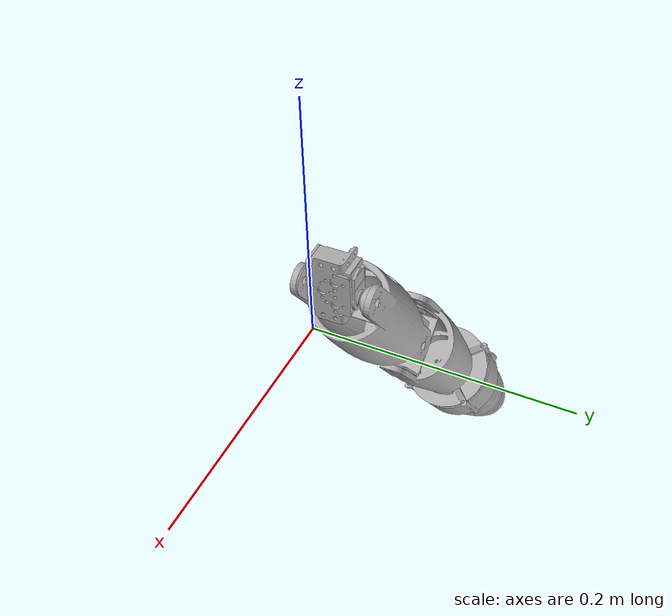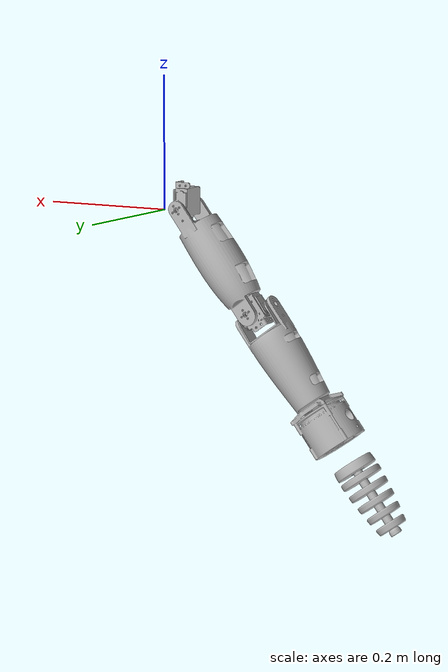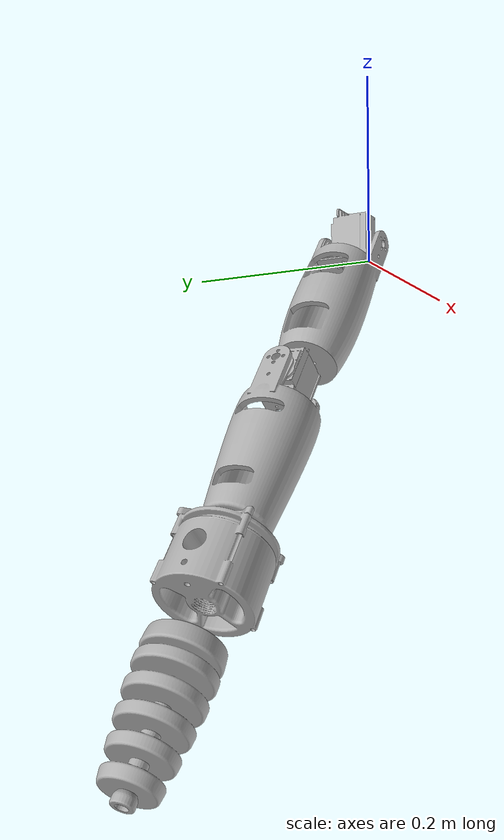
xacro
<?xml version="1.0" ?>
<robot name="right_arm" xmlns:xacro="http://www.ros.org/wiki/xacro">

<xacro:include filename="$(find right_arm_description)/urdf/materials.xacro" />
<xacro:include filename="$(find right_arm_description)/urdf/right_arm.trans" />
<xacro:include filename="$(find right_arm_description)/urdf/right_arm.gazebo" />
<link name="base_link">
  <inertial>
    <origin xyz="-0.03715849973861051 -0.00020329062987886615 0.015366473055754261" rpy="0 0 0"/>
    <mass value="0.28416481806119953"/>
    <inertia ixx="8e-05" iyy="5.8e-05" izz="4.7e-05" ixy="0.0" iyz="0.0" ixz="0.0"/>
  </inertial>
  <visual>
    <origin xyz="0 0 0" rpy="0 0 0"/>
    <geometry>
      <mesh filename="package://right_arm_description/meshes/base_link.stl" scale="0.001 0.001 0.001"/>
    </geometry>
    <material name="silver"/>
  </visual>
  <collision>
    <origin xyz="0 0 0" rpy="0 0 0"/>
    <geometry>
      <mesh filename="package://right_arm_description/meshes/base_link.stl" scale="0.001 0.001 0.001"/>
    </geometry>
  </collision>
</link>

<link name="connector_u_1">
  <inertial>
    <origin xyz="-0.025339184270491446 -0.00997035637520933 -0.00917155225541377" rpy="0 0 0"/>
    <mass value="0.018830430952545957"/>
    <inertia ixx="1.2e-05" iyy="4e-06" izz="1.2e-05" ixy="-1e-06" iyz="-1e-06" ixz="-1e-06"/>
  </inertial>
  <visual>
    <origin xyz="0.024135 -0.013339 -0.003814" rpy="0 0 0"/>
    <geometry>
      <mesh filename="package://right_arm_description/meshes/connector_u_1.stl" scale="0.001 0.001 0.001"/>
    </geometry>
    <material name="silver"/>
  </visual>
  <collision>
    <origin xyz="0.024135 -0.013339 -0.003814" rpy="0 0 0"/>
    <geometry>
      <mesh filename="package://right_arm_description/meshes/connector_u_1.stl" scale="0.001 0.001 0.001"/>
    </geometry>
  </collision>
</link>

<link name="right_hindarm_1">
  <inertial>
    <origin xyz="-0.06820099453208438 -0.02644661581406854 -0.06978866714291666" rpy="0 0 0"/>
    <mass value="0.1770924654468453"/>
    <inertia ixx="0.000315" iyy="0.000462" izz="0.000327" ixy="1.1e-05" iyz="1e-05" ixz="-0.000166"/>
  </inertial>
  <visual>
    <origin xyz="0.038228 -0.028052 -0.005362" rpy="0 0 0"/>
    <geometry>
      <mesh filename="package://right_arm_description/meshes/right_hindarm_1.stl" scale="0.001 0.001 0.001"/>
    </geometry>
    <material name="silver"/>
  </visual>
  <collision>
    <origin xyz="0.038228 -0.028052 -0.005362" rpy="0 0 0"/>
    <geometry>
      <mesh filename="package://right_arm_description/meshes/right_hindarm_1.stl" scale="0.001 0.001 0.001"/>
    </geometry>
  </collision>
</link>

<link name="motor20_1">
  <inertial>
    <origin xyz="-0.003158263165506048 -0.0124805305057418 0.003407910222114105" rpy="0 0 0"/>
    <mass value="0.28416451045523133"/>
    <inertia ixx="5.2e-05" iyy="8e-05" izz="5.3e-05" ixy="-0.0" iyz="0.0" ixz="-6e-06"/>
  </inertial>
  <visual>
    <origin xyz="0.170565 -0.016556 0.122908" rpy="0 0 0"/>
    <geometry>
      <mesh filename="package://right_arm_description/meshes/motor20_1.stl" scale="0.001 0.001 0.001"/>
    </geometry>
    <material name="silver"/>
  </visual>
  <collision>
    <origin xyz="0.170565 -0.016556 0.122908" rpy="0 0 0"/>
    <geometry>
      <mesh filename="package://right_arm_description/meshes/motor20_1.stl" scale="0.001 0.001 0.001"/>
    </geometry>
  </collision>
</link>

<link name="connector_l_1">
  <inertial>
    <origin xyz="0.0015039608596267295 0.0004767611886328702 -0.02386452425575708" rpy="0 0 0"/>
    <mass value="0.018830430952545957"/>
    <inertia ixx="9e-06" iyy="1.3e-05" izz="6e-06" ixy="0.0" iyz="0.0" ixz="3e-06"/>
  </inertial>
  <visual>
    <origin xyz="0.1957 -0.003006 0.111201" rpy="0 0 0"/>
    <geometry>
      <mesh filename="package://right_arm_description/meshes/connector_l_1.stl" scale="0.001 0.001 0.001"/>
    </geometry>
    <material name="silver"/>
  </visual>
  <collision>
    <origin xyz="0.1957 -0.003006 0.111201" rpy="0 0 0"/>
    <geometry>
      <mesh filename="package://right_arm_description/meshes/connector_l_1.stl" scale="0.001 0.001 0.001"/>
    </geometry>
  </collision>
</link>

<link name="right_forearm_1">
  <inertial>
    <origin xyz="-0.08616984285299548 -0.0045434895837697265 -0.04572970608236904" rpy="0 0 0"/>
    <mass value="0.17930247570310415"/>
    <inertia ixx="0.000329" iyy="0.00047" izz="0.00029" ixy="-1e-05" iyz="-1.1e-05" ixz="-0.00015"/>
  </inertial>
  <visual>
    <origin xyz="0.161249 -0.003006 0.146744" rpy="0 0 0"/>
    <geometry>
      <mesh filename="package://right_arm_description/meshes/right_forearm_1.stl" scale="0.001 0.001 0.001"/>
    </geometry>
    <material name="silver"/>
  </visual>
  <collision>
    <origin xyz="0.161249 -0.003006 0.146744" rpy="0 0 0"/>
    <geometry>
      <mesh filename="package://right_arm_description/meshes/right_forearm_1.stl" scale="0.001 0.001 0.001"/>
    </geometry>
  </collision>
</link>

<link name="sprayer_body_1">
  <inertial>
    <origin xyz="-0.02699898767586356 -0.00196922857037568 -0.026379058486548784" rpy="0 0 0"/>
    <mass value="1.754105749905676"/>
    <inertia ixx="0.001407" iyy="0.001427" izz="0.00144" ixy="2e-06" iyz="3e-06" ixz="8.8e-05"/>
  </inertial>
  <visual>
    <origin xyz="0.290933 0.004332 0.230801" rpy="0 0 0"/>
    <geometry>
      <mesh filename="package://right_arm_description/meshes/sprayer_body_1.stl" scale="0.001 0.001 0.001"/>
    </geometry>
    <material name="silver"/>
  </visual>
  <collision>
    <origin xyz="0.290933 0.004332 0.230801" rpy="0 0 0"/>
    <geometry>
      <mesh filename="package://right_arm_description/meshes/sprayer_body_1.stl" scale="0.001 0.001 0.001"/>
    </geometry>
  </collision>
</link>

<link name="sprayer_hose_1">
  <inertial>
    <origin xyz="-0.4722077974113481 0.011655732410039386 -0.1981444441768364" rpy="0 0 0"/>
    <mass value="0.20957861514118575"/>
    <inertia ixx="0.00018" iyy="0.000273" izz="0.000186" ixy="-6e-06" iyz="-6e-06" ixz="-9.1e-05"/>
  </inertial>
  <visual>
    <origin xyz="-0.073755 0.022854 0.135556" rpy="0 0 0"/>
    <geometry>
      <mesh filename="package://right_arm_description/meshes/sprayer_hose_1.stl" scale="0.001 0.001 0.001"/>
    </geometry>
    <material name="silver"/>
  </visual>
  <collision>
    <origin xyz="-0.073755 0.022854 0.135556" rpy="0 0 0"/>
    <geometry>
      <mesh filename="package://right_arm_description/meshes/sprayer_hose_1.stl" scale="0.001 0.001 0.001"/>
    </geometry>
  </collision>
</link>

<joint name="Revolute 1" type="continuous">
  <origin xyz="-0.024135 0.013339 0.003814" rpy="0 0 0"/>
  <parent link="base_link"/>
  <child link="connector_u_1"/>
  <axis xyz="0.0 1.0 -0.0"/>
</joint>

<joint name="Rigid 2" type="fixed">
  <origin xyz="-0.014093 0.014713 0.001548" rpy="0 0 0"/>
  <parent link="connector_u_1"/>
  <child link="right_hindarm_1"/>
</joint>

<joint name="Rigid 3" type="fixed">
  <origin xyz="-0.132337 -0.011496 -0.12827" rpy="0 0 0"/>
  <parent link="right_hindarm_1"/>
  <child link="motor20_1"/>
</joint>

<joint name="Revolute 4" type="continuous">
  <origin xyz="-0.025135 -0.01355 0.011707" rpy="0 0 0"/>
  <parent link="motor20_1"/>
  <child link="connector_l_1"/>
  <axis xyz="-0.695986 0.0 0.718056"/>
</joint>

<joint name="Rigid 5" type="fixed">
  <origin xyz="0.034451 0.0 -0.035543" rpy="0 0 0"/>
  <parent link="connector_l_1"/>
  <child link="right_forearm_1"/>
</joint>

<joint name="Rigid 6" type="fixed">
  <origin xyz="-0.129684 -0.007338 -0.084057" rpy="0 0 0"/>
  <parent link="right_forearm_1"/>
  <child link="sprayer_body_1"/>
</joint>

<joint name="Rigid 7" type="fixed">
  <origin xyz="0.364688 -0.018522 0.095245" rpy="0 0 0"/>
  <parent link="sprayer_body_1"/>
  <child link="sprayer_hose_1"/>
</joint>

</robot>

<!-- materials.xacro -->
<robot name="right_arm" xmlns:xacro="http://www.ros.org/wiki/xacro" >

<material name="silver">
  <color rgba="0.700 0.700 0.700 1.000"/>
</material>

</robot>

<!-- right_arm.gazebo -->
<robot name="right_arm" xmlns:xacro="http://www.ros.org/wiki/xacro" >

<xacro:property name="body_color" value="Gazebo/Silver" />

<gazebo>
  <plugin name="control" filename="libgazebo_ros_control.so"/>
</gazebo>
<gazebo reference="base_link">
  <material>${body_color}</material>
  <mu1>0.2</mu1>
  <mu2>0.2</mu2>
  <selfCollide>true</selfCollide>
  <gravity>true</gravity>
</gazebo>

<gazebo reference="connector_u_1">
  <material>${body_color}</material>
  <mu1>0.2</mu1>
  <mu2>0.2</mu2>
  <selfCollide>true</selfCollide>
</gazebo>

<gazebo reference="right_hindarm_1">
  <material>${body_color}</material>
  <mu1>0.2</mu1>
  <mu2>0.2</mu2>
  <selfCollide>true</selfCollide>
</gazebo>

<gazebo reference="motor20_1">
  <material>${body_color}</material>
  <mu1>0.2</mu1>
  <mu2>0.2</mu2>
  <selfCollide>true</selfCollide>
</gazebo>

<gazebo reference="connector_l_1">
  <material>${body_color}</material>
  <mu1>0.2</mu1>
  <mu2>0.2</mu2>
  <selfCollide>true</selfCollide>
</gazebo>

<gazebo reference="right_forearm_1">
  <material>${body_color}</material>
  <mu1>0.2</mu1>
  <mu2>0.2</mu2>
  <selfCollide>true</selfCollide>
</gazebo>

<gazebo reference="sprayer_body_1">
  <material>${body_color}</material>
  <mu1>0.2</mu1>
  <mu2>0.2</mu2>
  <selfCollide>true</selfCollide>
</gazebo>

<gazebo reference="sprayer_hose_1">
  <material>${body_color}</material>
  <mu1>0.2</mu1>
  <mu2>0.2</mu2>
  <selfCollide>true</selfCollide>
</gazebo>

</robot>
